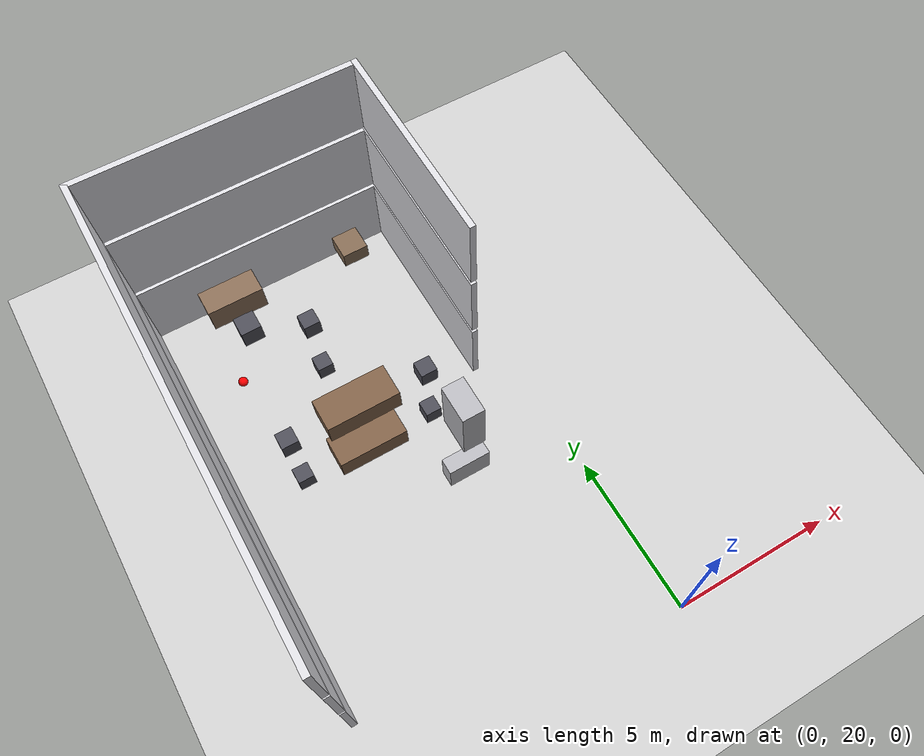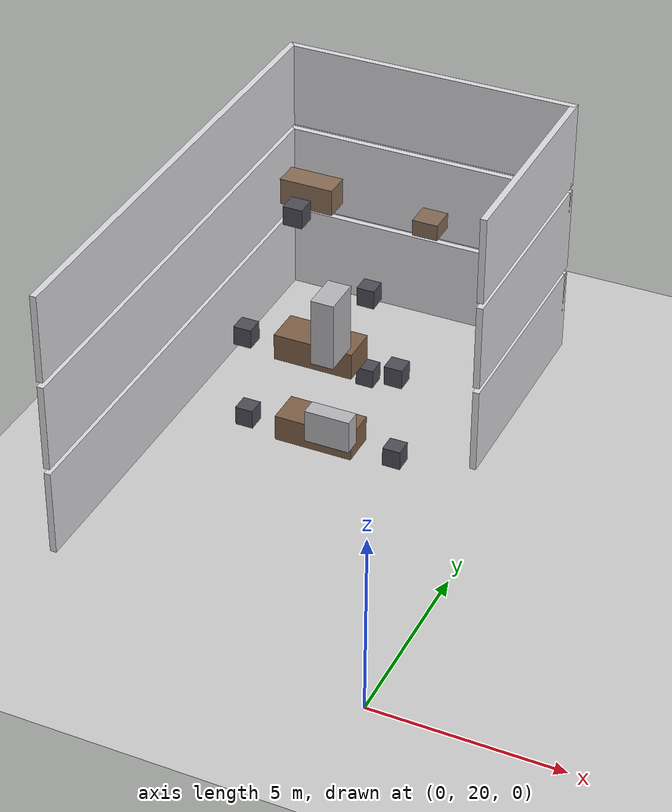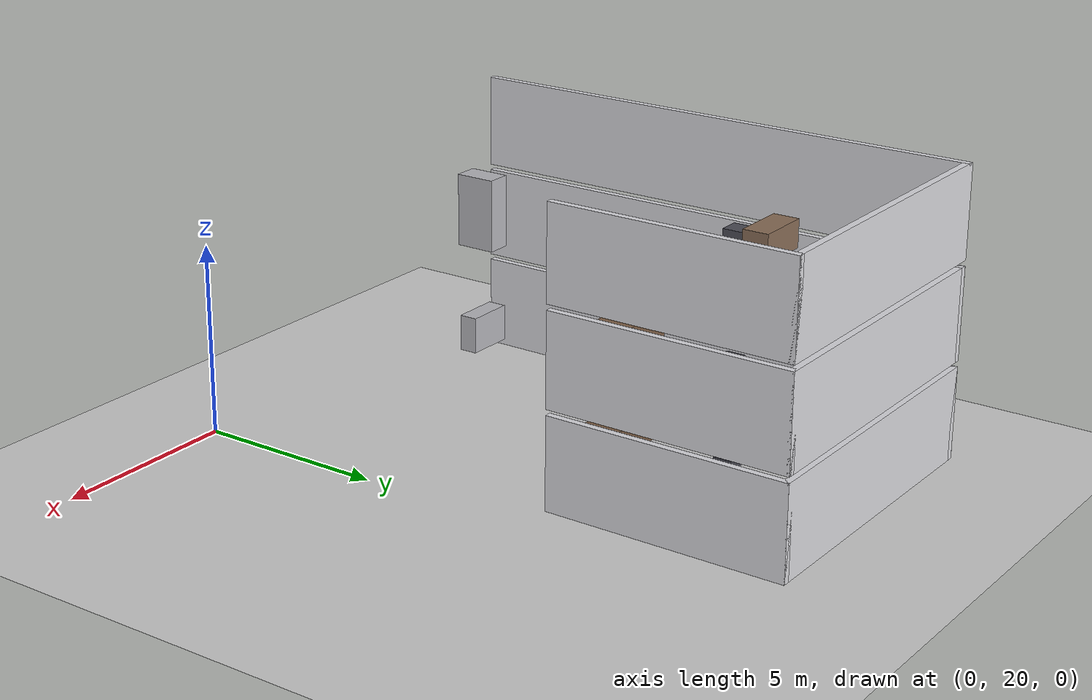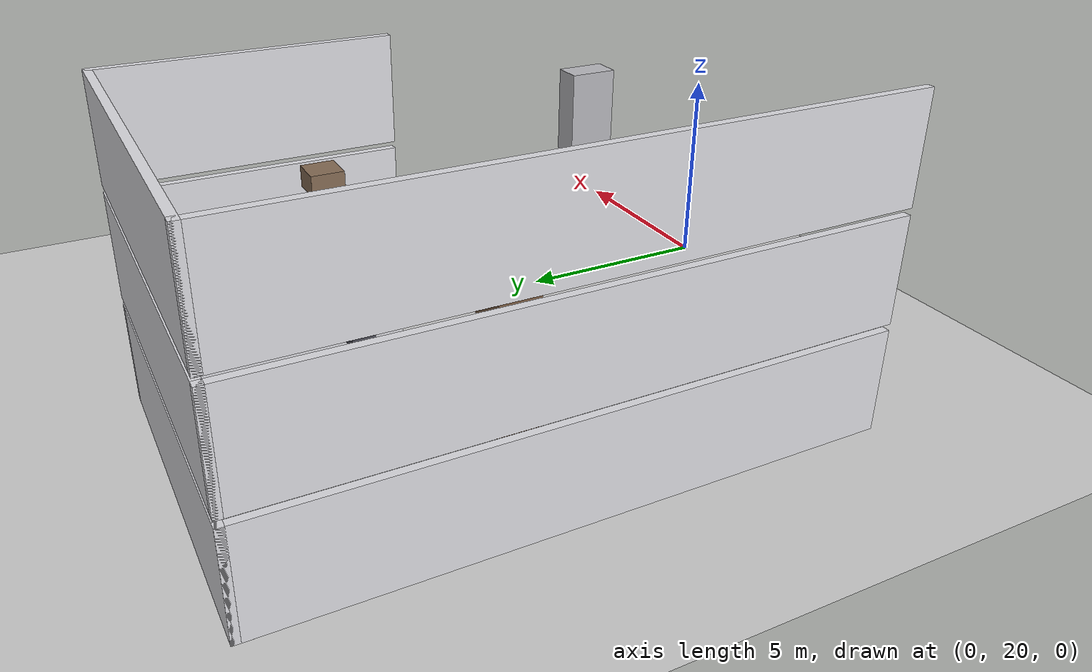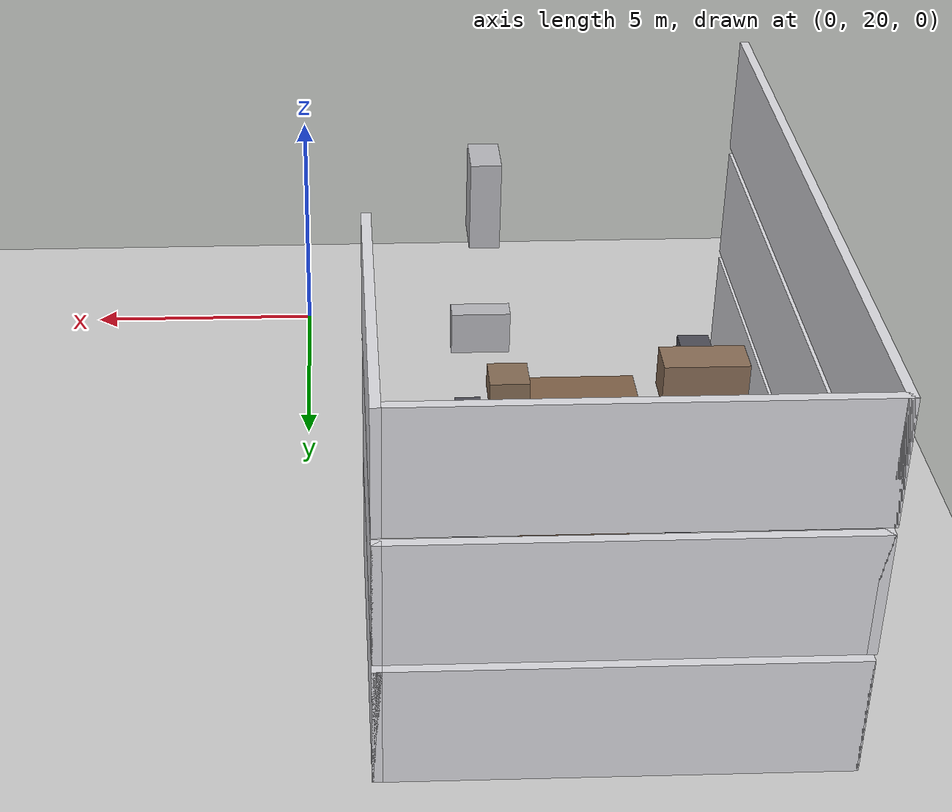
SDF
<sdf version="1.7">
 <world name="generated_world">
  <include><uri>model://sun</uri></include>
  <include><uri>model://ground_plane</uri></include>
  <model name="generated_building">
   <static>true</static>
   <link name="floor_0_room_2_corridor_wall_upper">
    <pose>-1.1900 32.7025 1.2250 0.0000 0.0000 0.0000</pose>
    <collision name="floor_0_room_2_corridor_wall_upper_collision">
     <geometry><box><size>0.1800 6.4150 2.4500</size></box></geometry>
    </collision>
    <visual name="floor_0_room_2_corridor_wall_upper_visual">
     <geometry><box><size>0.1800 6.4150 2.4500</size></box></geometry>
     <material><ambient>0.86 0.86 0.88 1</ambient><diffuse>0.86 0.86 0.88 1</diffuse></material>
    </visual>
    <gravity>false</gravity>
   </link>
   <link name="floor_0_room_2_west_wall">
    <pose>-9.4100 28.8950 1.2250 0.0000 0.0000 0.0000</pose>
    <collision name="floor_0_room_2_west_wall_collision">
     <geometry><box><size>0.1800 14.0300 2.4500</size></box></geometry>
    </collision>
    <visual name="floor_0_room_2_west_wall_visual">
     <geometry><box><size>0.1800 14.0300 2.4500</size></box></geometry>
     <material><ambient>0.86 0.86 0.88 1</ambient><diffuse>0.86 0.86 0.88 1</diffuse></material>
    </visual>
    <gravity>false</gravity>
   </link>
   <link name="floor_0_room_2_north_wall">
    <pose>-5.3000 35.8200 1.2250 0.0000 0.0000 0.0000</pose>
    <collision name="floor_0_room_2_north_wall_collision">
     <geometry><box><size>8.4000 0.1800 2.4500</size></box></geometry>
    </collision>
    <visual name="floor_0_room_2_north_wall_visual">
     <geometry><box><size>8.4000 0.1800 2.4500</size></box></geometry>
     <material><ambient>0.86 0.86 0.88 1</ambient><diffuse>0.86 0.86 0.88 1</diffuse></material>
    </visual>
    <gravity>false</gravity>
   </link>
   <link name="floor_0_room_2_table">
    <pose>-5.3000 28.8950 0.4500 0.0000 0.0000 0.0000</pose>
    <collision name="floor_0_room_2_table_collision">
     <geometry><box><size>2.2000 1.0000 0.7500</size></box></geometry>
    </collision>
    <visual name="floor_0_room_2_table_visual">
     <geometry><box><size>2.2000 1.0000 0.7500</size></box></geometry>
     <material><ambient>0.50 0.38 0.28 1</ambient><diffuse>0.50 0.38 0.28 1</diffuse></material>
    </visual>
    <gravity>false</gravity>
   </link>
   <link name="floor_0_room_2_chair_north">
    <pose>-5.3000 31.9525 0.2800 0.0000 0.0000 0.0000</pose>
    <collision name="floor_0_room_2_chair_north_collision">
     <geometry><box><size>0.5000 0.5000 0.5500</size></box></geometry>
    </collision>
    <visual name="floor_0_room_2_chair_north_visual">
     <geometry><box><size>0.5000 0.5000 0.5500</size></box></geometry>
     <material><ambient>0.30 0.30 0.34 1</ambient><diffuse>0.30 0.30 0.34 1</diffuse></material>
    </visual>
    <gravity>false</gravity>
   </link>
   <link name="floor_0_room_2_chair_west">
    <pose>-7.4500 28.8950 0.2800 0.0000 0.0000 1.5700</pose>
    <collision name="floor_0_room_2_chair_west_collision">
     <geometry><box><size>0.5000 0.5000 0.5500</size></box></geometry>
    </collision>
    <visual name="floor_0_room_2_chair_west_visual">
     <geometry><box><size>0.5000 0.5000 0.5500</size></box></geometry>
     <material><ambient>0.30 0.30 0.34 1</ambient><diffuse>0.30 0.30 0.34 1</diffuse></material>
    </visual>
    <gravity>false</gravity>
   </link>
   <link name="floor_0_room_2_chair_east">
    <pose>-3.1500 28.8950 0.2800 0.0000 0.0000 1.5700</pose>
    <collision name="floor_0_room_2_chair_east_collision">
     <geometry><box><size>0.5000 0.5000 0.5500</size></box></geometry>
    </collision>
    <visual name="floor_0_room_2_chair_east_visual">
     <geometry><box><size>0.5000 0.5000 0.5500</size></box></geometry>
     <material><ambient>0.30 0.30 0.34 1</ambient><diffuse>0.30 0.30 0.34 1</diffuse></material>
    </visual>
    <gravity>false</gravity>
   </link>
   <link name="floor_1_room_2_corridor_wall_upper">
    <pose>-1.1900 32.7025 3.8250 0.0000 0.0000 0.0000</pose>
    <collision name="floor_1_room_2_corridor_wall_upper_collision">
     <geometry><box><size>0.1800 6.4150 2.4500</size></box></geometry>
    </collision>
    <visual name="floor_1_room_2_corridor_wall_upper_visual">
     <geometry><box><size>0.1800 6.4150 2.4500</size></box></geometry>
     <material><ambient>0.86 0.86 0.88 1</ambient><diffuse>0.86 0.86 0.88 1</diffuse></material>
    </visual>
    <gravity>false</gravity>
   </link>
   <link name="floor_1_room_2_west_wall">
    <pose>-9.4100 28.8950 3.8250 0.0000 0.0000 0.0000</pose>
    <collision name="floor_1_room_2_west_wall_collision">
     <geometry><box><size>0.1800 14.0300 2.4500</size></box></geometry>
    </collision>
    <visual name="floor_1_room_2_west_wall_visual">
     <geometry><box><size>0.1800 14.0300 2.4500</size></box></geometry>
     <material><ambient>0.86 0.86 0.88 1</ambient><diffuse>0.86 0.86 0.88 1</diffuse></material>
    </visual>
    <gravity>false</gravity>
   </link>
   <link name="floor_1_room_2_north_wall">
    <pose>-5.3000 35.8200 3.8250 0.0000 0.0000 0.0000</pose>
    <collision name="floor_1_room_2_north_wall_collision">
     <geometry><box><size>8.4000 0.1800 2.4500</size></box></geometry>
    </collision>
    <visual name="floor_1_room_2_north_wall_visual">
     <geometry><box><size>8.4000 0.1800 2.4500</size></box></geometry>
     <material><ambient>0.86 0.86 0.88 1</ambient><diffuse>0.86 0.86 0.88 1</diffuse></material>
    </visual>
    <gravity>false</gravity>
   </link>
   <link name="floor_1_room_2_table">
    <pose>-5.3000 28.8950 3.0500 0.0000 0.0000 0.0000</pose>
    <collision name="floor_1_room_2_table_collision">
     <geometry><box><size>2.2000 1.0000 0.7500</size></box></geometry>
    </collision>
    <visual name="floor_1_room_2_table_visual">
     <geometry><box><size>2.2000 1.0000 0.7500</size></box></geometry>
     <material><ambient>0.50 0.38 0.28 1</ambient><diffuse>0.50 0.38 0.28 1</diffuse></material>
    </visual>
    <gravity>false</gravity>
   </link>
   <link name="floor_1_room_2_chair_north">
    <pose>-5.3000 31.9525 2.8800 0.0000 0.0000 0.0000</pose>
    <collision name="floor_1_room_2_chair_north_collision">
     <geometry><box><size>0.5000 0.5000 0.5500</size></box></geometry>
    </collision>
    <visual name="floor_1_room_2_chair_north_visual">
     <geometry><box><size>0.5000 0.5000 0.5500</size></box></geometry>
     <material><ambient>0.30 0.30 0.34 1</ambient><diffuse>0.30 0.30 0.34 1</diffuse></material>
    </visual>
    <gravity>false</gravity>
   </link>
   <link name="floor_1_room_2_chair_west">
    <pose>-7.4500 28.8950 2.8800 0.0000 0.0000 1.5700</pose>
    <collision name="floor_1_room_2_chair_west_collision">
     <geometry><box><size>0.5000 0.5000 0.5500</size></box></geometry>
    </collision>
    <visual name="floor_1_room_2_chair_west_visual">
     <geometry><box><size>0.5000 0.5000 0.5500</size></box></geometry>
     <material><ambient>0.30 0.30 0.34 1</ambient><diffuse>0.30 0.30 0.34 1</diffuse></material>
    </visual>
    <gravity>false</gravity>
   </link>
   <link name="floor_1_room_2_chair_east">
    <pose>-3.1500 28.8950 2.8800 0.0000 0.0000 1.5700</pose>
    <collision name="floor_1_room_2_chair_east_collision">
     <geometry><box><size>0.5000 0.5000 0.5500</size></box></geometry>
    </collision>
    <visual name="floor_1_room_2_chair_east_visual">
     <geometry><box><size>0.5000 0.5000 0.5500</size></box></geometry>
     <material><ambient>0.30 0.30 0.34 1</ambient><diffuse>0.30 0.30 0.34 1</diffuse></material>
    </visual>
    <gravity>false</gravity>
   </link>
   <link name="floor_1_room_2_credenza">
    <pose>-3.6000 25.8375 3.0500 0.0000 0.0000 0.0000</pose>
    <collision name="floor_1_room_2_credenza_collision">
     <geometry><box><size>1.2000 0.4500 0.9000</size></box></geometry>
    </collision>
    <visual name="floor_1_room_2_credenza_visual">
     <geometry><box><size>1.2000 0.4500 0.9000</size></box></geometry>
     <material><ambient>0.72 0.72 0.74 1</ambient><diffuse>0.72 0.72 0.74 1</diffuse></material>
    </visual>
    <gravity>false</gravity>
   </link>
   <link name="floor_2_room_2_corridor_wall_upper">
    <pose>-1.1900 32.7025 6.4250 0.0000 0.0000 0.0000</pose>
    <collision name="floor_2_room_2_corridor_wall_upper_collision">
     <geometry><box><size>0.1800 6.4150 2.4500</size></box></geometry>
    </collision>
    <visual name="floor_2_room_2_corridor_wall_upper_visual">
     <geometry><box><size>0.1800 6.4150 2.4500</size></box></geometry>
     <material><ambient>0.86 0.86 0.88 1</ambient><diffuse>0.86 0.86 0.88 1</diffuse></material>
    </visual>
    <gravity>false</gravity>
   </link>
   <link name="floor_2_room_2_west_wall">
    <pose>-9.4100 28.8950 6.4250 0.0000 0.0000 0.0000</pose>
    <collision name="floor_2_room_2_west_wall_collision">
     <geometry><box><size>0.1800 14.0300 2.4500</size></box></geometry>
    </collision>
    <visual name="floor_2_room_2_west_wall_visual">
     <geometry><box><size>0.1800 14.0300 2.4500</size></box></geometry>
     <material><ambient>0.86 0.86 0.88 1</ambient><diffuse>0.86 0.86 0.88 1</diffuse></material>
    </visual>
    <gravity>false</gravity>
   </link>
   <link name="floor_2_room_2_north_wall">
    <pose>-5.3000 35.8200 6.4250 0.0000 0.0000 0.0000</pose>
    <collision name="floor_2_room_2_north_wall_collision">
     <geometry><box><size>8.4000 0.1800 2.4500</size></box></geometry>
    </collision>
    <visual name="floor_2_room_2_north_wall_visual">
     <geometry><box><size>8.4000 0.1800 2.4500</size></box></geometry>
     <material><ambient>0.86 0.86 0.88 1</ambient><diffuse>0.86 0.86 0.88 1</diffuse></material>
    </visual>
    <gravity>false</gravity>
   </link>
   <link name="floor_2_room_2_desk">
    <pose>-7.0000 31.9525 5.6500 0.0000 0.0000 0.0000</pose>
    <collision name="floor_2_room_2_desk_collision">
     <geometry><box><size>1.5000 0.7000 0.7500</size></box></geometry>
    </collision>
    <visual name="floor_2_room_2_desk_visual">
     <geometry><box><size>1.5000 0.7000 0.7500</size></box></geometry>
     <material><ambient>0.54 0.43 0.34 1</ambient><diffuse>0.54 0.43 0.34 1</diffuse></material>
    </visual>
    <gravity>false</gravity>
   </link>
   <link name="floor_2_room_2_chair">
    <pose>-7.0000 31.0525 5.4800 0.0000 0.0000 0.0000</pose>
    <collision name="floor_2_room_2_chair_collision">
     <geometry><box><size>0.5500 0.5500 0.5500</size></box></geometry>
    </collision>
    <visual name="floor_2_room_2_chair_visual">
     <geometry><box><size>0.5500 0.5500 0.5500</size></box></geometry>
     <material><ambient>0.30 0.30 0.34 1</ambient><diffuse>0.30 0.30 0.34 1</diffuse></material>
    </visual>
    <gravity>false</gravity>
   </link>
   <link name="floor_2_room_2_cabinet">
    <pose>-3.6000 25.8375 6.1000 0.0000 0.0000 0.0000</pose>
    <collision name="floor_2_room_2_cabinet_collision">
     <geometry><box><size>0.6000 1.0000 1.8000</size></box></geometry>
    </collision>
    <visual name="floor_2_room_2_cabinet_visual">
     <geometry><box><size>0.6000 1.0000 1.8000</size></box></geometry>
     <material><ambient>0.72 0.72 0.74 1</ambient><diffuse>0.72 0.72 0.74 1</diffuse></material>
    </visual>
    <gravity>false</gravity>
   </link>
   <link name="floor_2_room_2_side_table">
    <pose>-3.6000 31.9525 5.5200 0.0000 0.0000 0.0000</pose>
    <collision name="floor_2_room_2_side_table_collision">
     <geometry><box><size>0.7000 0.7000 0.4500</size></box></geometry>
    </collision>
    <visual name="floor_2_room_2_side_table_visual">
     <geometry><box><size>0.7000 0.7000 0.4500</size></box></geometry>
     <material><ambient>0.52 0.42 0.33 1</ambient><diffuse>0.52 0.42 0.33 1</diffuse></material>
    </visual>
    <gravity>false</gravity>
   </link>
  </model>
  <model name="danger_red_sphere_05">
   <static>true</static>
   <pose>-7.716531 32.778280 0.150000 0.000000 0.000000 0.000000</pose>
   <link name="link">
    <collision name="collision"><geometry><sphere><radius>0.150</radius></sphere></geometry></collision>
    <visual name="visual">
     <geometry><sphere><radius>0.150</radius></sphere></geometry>
     <material><ambient>1.0 0.0 0.0 1.0</ambient><diffuse>1.0 0.0 0.0 1.0</diffuse></material>
    </visual>
   </link>
  </model>
 </world>
</sdf>
